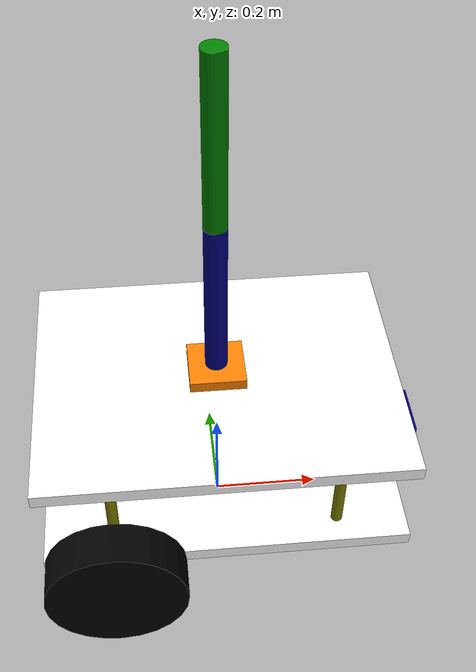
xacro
<?xml version="1.0"?>

<robot name="diff_drive_arm_robot" xmlns:xacro="http://www.ros.org/wiki/xacro">

    <xacro:include filename="properties.xacro" />
    <xacro:include filename="robot_base.xacro" />
    <xacro:include filename="gazebo_urdf_plugin.xacro" />
    <xacro:include filename="arm_robot_base.xacro" />
    <xacro:include filename="sensors.xacro" />

    <joint name="robot_arm_base_joint" type="fixed">
        <parent link="base_link"/>
        <child link="arm_base_link" />
        <origin xyz="0 0 ${base_distance + arm_base_height}" rpy="0 0 0"/>
    </joint>

</robot>

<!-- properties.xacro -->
<robot xmlns:xacro="https://www.ros.org/wiki/xacro">

    <material name="black">
        <color rgba="0 0 0 1" />
    </material>

    <material name="white">
        <color rgba="1 1 1 1" />
    </material>

    <material name="blue">
        <color rgba="0 0 0.5 1" />
    </material>

    <material name="red">
        <color rgba="0.5 0 0 1" />
    </material>

    <material name="green">
        <color rgba="0 0.5 0 1" />
    </material>

    <material name="yellow">
        <color rgba="0.5 0.5 0 1" />
    </material>

    <material name="grey">
        <color rgba="0.5 0.5 0.5 1" />
    </material>

    <material name="orange">
        <color rgba="1 0.5 0 1" />
    </material>

    <xacro:macro name="cylinder_inertia" params="mass radius height o_xyz o_rpy">
        <inertial>
            <mass value="${mass}" />
            <origin xyz="${o_xyz}" rpy="${o_rpy}" />
            <inertia ixx="${(mass/12) * (3 * radius * radius + height * height)}" ixy="0" ixz="0"
                     iyy="${(mass/12) * (3 * radius * radius + height * height)}" iyz="0"
                     izz="${(mass/2) * radius * radius}" />
        </inertial>
    </xacro:macro>

    <xacro:macro name="sphere_inertia" params="mass radius o_xyz o_rpy">
        <inertial>
            <mass value="${mass}" />
            <origin xyz="${o_xyz}" rpy="${o_rpy}" />
            <inertia ixx="${(2/5) * mass * radius * radius}" ixy="0" ixz="0"
                     iyy="${(2/5) * mass * radius * radius}" iyz="0"
                     izz="${(2/5) * mass * radius * radius}" />
        </inertial>
    </xacro:macro>

    <xacro:macro name="box_inertia" params="mass x y z o_xyz o_rpy">
        <inertial>
            <mass value="${mass}" />
            <origin xyz="${o_xyz}" rpy="${o_rpy}" />
            <inertia ixx="${(mass/12) * (y*y + z*z)}" ixy="0" ixz="0"
                     iyy="${(mass/12) * (x*x + z*z)}" iyz="0"
                     izz="${(mass/12) * (x*x + y*y)}" />
        </inertial>
    </xacro:macro>

</robot>

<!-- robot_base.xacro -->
<robot xmlns:xacro="http://www.ros.org/wiki/xacro">

    <xacro:property name="base_length" value="0.65"/>
    <xacro:property name="base_width" value="0.5"/>
    <xacro:property name="base_height" value="0.025"/>
    <xacro:property name="base_distance" value="0.20"/>
    <xacro:property name="wheel_radius" value="0.125"/>
    <xacro:property name="wheel_length" value="0.075"/>
    <xacro:property name="hex_crew_radius" value="0.01"/>
    <xacro:property name="hex_crew_height" value="0.175"/>

    <xacro:macro name="hex_crew_link" params="prefix">
        <link name="${prefix}_hex_crew_link">
            <visual>
                <geometry>
                    <cylinder radius="${hex_crew_radius}" length="${base_distance}" />
                </geometry>
                <origin xyz="0 0 0" rpy="0 0 0" />
                <material name="yellow" />
            </visual>
            <collision>
                <geometry>
                    <sphere radius="${hex_crew_radius}" />
                </geometry>
                <origin xyz="0 0 0" rpy="0 0 0" />
            </collision>
            <xacro:cylinder_inertia mass="0.05" radius="${hex_crew_radius}" height="${base_distance}" o_xyz="0 0 0" o_rpy="0 0 0" />
        </link>
    </xacro:macro>

    <xacro:hex_crew_link prefix="first"/>
    <xacro:hex_crew_link prefix="second"/>
    <xacro:hex_crew_link prefix="third"/>
    <xacro:hex_crew_link prefix="fourth"/>

    <xacro:macro name="wheel_link" params="prefix">
        <link name="${prefix}_wheel_link">
            <visual>
                <geometry>
                    <cylinder radius="${wheel_radius}" length="${wheel_length}" />
                </geometry>
                <origin xyz="0 0 0" rpy="${pi / 2.0} 0 0" />
                <material name="black" />
            </visual>
            <collision>
                <geometry>
                    <sphere radius="${wheel_radius}" />
                </geometry>
                <origin xyz="0 0 0" rpy="0 0 0" />
            </collision>
            <xacro:cylinder_inertia mass="0.25" radius="${wheel_radius}" height="${wheel_length}" o_xyz="0 0 0" o_rpy="${pi / 2.0} 0 0" />
        </link>
    </xacro:macro>

    <xacro:wheel_link prefix="right"/>
    <xacro:wheel_link prefix="left"/>

    <xacro:macro name="castor_wheel_link" params="prefix">
        <link name="${prefix}_castor_wheel_link">
            <visual>
                <geometry>
                    <sphere radius="${wheel_radius / 2}" />
                </geometry>
            <material name="yellow" />
            </visual>
            <collision>
                <geometry>
                    <sphere radius="${wheel_radius / 2}" />
                </geometry>
                <origin xyz="0 0 0" rpy="0 0 0" />
            </collision>
            <xacro:sphere_inertia mass="0.25" radius="${wheel_radius / 2.0}" o_xyz="0 0 0" o_rpy="0 0 0" />
        </link>
    </xacro:macro>

    <xacro:castor_wheel_link prefix="first"/>

    <link name="base_footprint"/>

    <link name="base_link">
        <visual>
            <geometry>
                <box size="${base_length} ${base_width} ${base_height}" />
            </geometry>
            <origin xyz="0 0 ${base_height / 2.0}" rpy="0 0 0" />
            <material name="white" />
        </visual>
        <collision>
            <geometry>
                <box size="${base_length} ${base_width} ${base_height}" />
            </geometry>
            <origin xyz="0 0 ${base_height / 2.0}" rpy="0 0 0" />
        </collision>
        <xacro:box_inertia mass="0.5" x="${base_length}" y="${base_width}" z="${base_height}" o_xyz="0 0 ${base_height / 2.0}" o_rpy="0 0 0" />
    </link>

    <joint name="base_joint" type="fixed">
        <parent link="base_footprint"/>
        <child link="base_link" />
        <origin xyz="0 0 ${wheel_radius}" rpy="0 0 0"/>
    </joint>

    <link name="second_base_link">
        <visual>
            <geometry>
                <box size="${base_length} ${base_width} ${base_height}" />
            </geometry>
            <origin xyz="0 0 0" rpy="0 0 0" />
            <material name="white" />
        </visual>
        <collision>
            <geometry>
                <box size="${base_length} ${base_width} ${base_height}" />
            </geometry>
            <origin xyz="0 0 ${base_height / 2.0}" rpy="0 0 0" />
        </collision>
        <xacro:box_inertia mass="0.5" x="${base_length}" y="${base_width}" z="${base_height}"
                           o_xyz="0 0 ${base_height / 2.0}" o_rpy="0 0 0" />
    </link>

    <joint name="second_base_joint" type="fixed">
        <parent link="base_link" />
        <child link="second_base_link" />
        <origin xyz="0 0 ${base_distance}" rpy="0 0 0" />
    </joint>

    <joint name="base_right_wheel_joint" type="continuous">
        <parent link="base_link" />
        <child link="right_wheel_link" />
        <origin xyz="-${base_width / 2.5} ${(base_width + wheel_length) / 2.0} 0" rpy="0 0 0" />
        <axis xyz="0 1 0" />
    </joint>

    <joint name="base_left_wheel_joint" type="continuous">
        <parent link="base_link" />
        <child link="left_wheel_link" />
        <origin xyz="-${base_width / 2.5} -${(base_width + wheel_length) / 2.0} 0" rpy="0 0 0" />
        <axis xyz="0 1 0" />
    </joint>

    <joint name="base_castor_wheel_joint" type="fixed">
        <parent link="base_link" />
        <child link="first_castor_wheel_link" />
        <origin xyz="${base_width / 2} 0 -${wheel_radius / 2}" rpy="0 0 0" />
    </joint>

    <joint name="first_hex_crew_joint" type="fixed">
        <parent link="base_link" />
        <child link="first_hex_crew_link" />
        <origin xyz="-${base_width / 2.5} -${base_width / 2.5} ${base_distance / 2.0}" rpy="0 0 0" />
    </joint>

    <joint name="second_hex_crew_joint" type="fixed">
        <parent link="base_link" />
        <child link="second_hex_crew_link" />
        <origin xyz="${base_width / 2.5} ${base_width / 2.5} ${base_distance / 2.0}" rpy="0 0 0" />
    </joint>

    <joint name="third_hex_crew_joint" type="fixed">
        <parent link="base_link" />
        <child link="third_hex_crew_link" />
        <origin xyz="${base_width / 2.5} -${base_width / 2.5} ${base_distance / 2.0}" rpy="0 0 0" />
    </joint>

    <joint name="fourth_hex_crew_joint" type="fixed">
        <parent link="base_link" />
        <child link="fourth_hex_crew_link" />
        <origin xyz="-${base_width / 2.5} ${base_width / 2.5} ${base_distance / 2.0}" rpy="0 0 0" />
    </joint>

</robot>

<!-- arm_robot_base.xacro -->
<robot xmlns:xacro="http://www.ros.org/wiki/xacro">

    <xacro:property name="arm_base_length" value="0.1"/>
    <xacro:property name="arm_base_width" value="0.1"/>
    <xacro:property name="arm_base_height" value="0.02"/>
    <xacro:property name="arm_base_mass" value="0.15"/>
    <xacro:property name="forearm_radius" value="0.02"/>
    <xacro:property name="forearm_length" value="0.3"/>
    <xacro:property name="forearm_mass" value="0.15"/>
    <xacro:property name="hand_radius" value="0.02"/>
    <xacro:property name="hand_length" value="0.3"/>
    <xacro:property name="hand_mass" value="0.15"/>

    <link name="arm_base_link">
        <visual>
            <geometry>
                <box size="${arm_base_length} ${arm_base_width} ${arm_base_height}"/>
            </geometry>
            <origin xyz="0 0 ${arm_base_height / 2.0}" rpy="0 0 0"/>
            <material name="orange"/>
        </visual>
        <collision>
            <geometry>
                <box size="${arm_base_length} ${arm_base_width} ${arm_base_height}"/>
            </geometry>
            <origin xyz="0 0 ${arm_base_height / 2.0}" rpy="0 0 0"/>
        </collision>
        <xacro:box_inertia mass="${arm_base_mass}" x="${arm_base_length}" y="${arm_base_width}" z="${arm_base_height}" o_xyz="0 0 0" o_rpy="0 0 0" />
    </link>

    <link name="forearm_link">
        <visual>
            <geometry>
                <cylinder radius="${forearm_radius}" length="${forearm_length}"/>
            </geometry>
            <origin xyz="0 0 ${forearm_length / 2.0}" rpy="0 0 0"/>
            <material name="blue"/>
        </visual>
        <collision>
            <geometry>
                <cylinder radius="${forearm_radius}" length="${forearm_length}"/>
            </geometry>
            <origin xyz="0 0 ${forearm_length / 2.0}" rpy="0 0 0"/>
        </collision>
        <xacro:cylinder_inertia mass="${forearm_mass}" radius="${forearm_radius}" height="${forearm_length}" o_xyz="0 0 ${forearm_length / 2.0}" o_rpy="0 0 0" />
    </link>

    <link name="hand_link" type="revolute">
        <visual>
            <geometry>
                <cylinder radius="${hand_radius}" length="${hand_length}"/>
            </geometry>
            <origin xyz="0 0 ${hand_length / 2.0}" rpy="0 0 0"/>
            <material name="green"/>
        </visual>
        <collision>
            <geometry>
                <cylinder radius="${hand_radius}" length="${hand_length}"/>
            </geometry>
            <origin xyz="0 0 ${hand_length / 2.0}" rpy="0 0 0"/>
        </collision>
        <xacro:cylinder_inertia mass="${hand_mass}" radius="${hand_radius}" height="${hand_length}" o_xyz="0 0 ${hand_length / 2.0}" o_rpy="0 0 0" />
    </link>

    <joint name="arm_base_forearm_joint" type="revolute">
        <parent link="arm_base_link"/>
        <child link="forearm_link"/>
        <origin xyz="0 0 ${arm_base_height}" rpy="0 0 0"/>
        <axis xyz="0 1 0" />
        <limit effort="100" velocity="100" lower="0" upper="${pi / 2.0}"/>
        <dynamics damping="0.3" friction="0.3"/>
    </joint>

    <joint name="forearm_hand_joint" type="revolute">
        <parent link="forearm_link"/>
        <child link="hand_link"/>
        <origin xyz="0 0 ${forearm_length}" rpy="0 0 0"/>
        <axis xyz="0 1 0" />
        <limit effort="100" velocity="100" lower="0" upper="${pi / 2.0}"/>
        <dynamics damping="0.3" friction="0.3"/>
    </joint>

</robot>

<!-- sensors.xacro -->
<robot xmlns:xacro="http://www.ros.org/wiki/xacro">

    <xacro:property name="camera_length" value="0.05"/>
    <xacro:property name="camera_width" value="0.1"/>
    <xacro:property name="camera_height" value="0.05"/>
    <xacro:property name="imu_length" value="0.075"/>
    <xacro:property name="imu_width" value="0.025"/>
    <xacro:property name="imu_height" value="0.02"/>
    <xacro:property name="lidar_radius" value="0.08"/>
    <xacro:property name="lidar_height" value="0.05"/>

    <link name="camera_link">
        <visual>
            <geometry>
                <box size="${camera_length} ${camera_width} ${camera_height}"/>
            </geometry>
            <origin xyz="0 0 0" rpy="0 0 0"/>
            <material name="blue"/>
        </visual>
        <collision>
            <geometry>
                <box size="${camera_length} ${camera_width} ${camera_height}"/>
            </geometry>
            <origin xyz="0 0 0" rpy="0 0 0"/>
        </collision>
        <xacro:box_inertia mass="0.15" x="${camera_length}" y="${camera_width}" z="${camera_height}" o_xyz="0 0 0" o_rpy="0 0 0" />
    </link>

    <link name = "camera_link_optical"/>

    <link name = "imu_link">
        <visual>
            <geometry>
                <box size="${imu_length} ${imu_width} ${imu_height}"/>
            </geometry>
            <origin xyz="0 0 0" rpy="0 0 0"/>
            <material name="red"/>
        </visual>
        <collision>
            <geometry>
                <box size="${imu_length} ${imu_width} ${imu_height}"/>
            </geometry>
            <origin xyz="0 0 0" rpy="0 0 0"/>
        </collision>
        <xacro:box_inertia mass="0.1" x="${imu_length}" y="${imu_width}" z="${imu_height}" o_xyz="0 0 0" o_rpy="0 0 0" />
    </link>

    <joint name = "base_camera_joint" type="fixed">
        <parent link="base_link"/>
        <child link="camera_link"/>
        <origin xyz="${(base_length + camera_length) / 2} 0 ${base_height + camera_height / 2}" rpy="0 0 0"/>
    </joint>

    <gazebo reference="camera_link">
        <sensor name="camera" type="camera">
            <camera>
                <horizontal_fov>1.0472</horizontal_fov>
                <image>
                    <width>640</width>
                    <height>480</height>
                    <format>R8G8B8</format>
                </image>
                <clip>
                    <near>0.1</near>
                    <far>15</far>
                </clip>
                <noise>
                    <type>gaussian</type>
                    <mean>0.0</mean>
                    <stddev>0.01</stddev>
                </noise>
                <optical_frame_id>camera_link_optical</optical_frame_id>
                <camera_info_topic>camera/camera_info</camera_info_topic>
            </camera>
            <always_on>true</always_on>
            <update_rate>20</update_rate>
            <visualize>true</visualize>
            <topic>camera/image_raw</topic>
        </sensor>
    </gazebo>

    <joint name="camera_optical_joint" type="fixed">
        <parent link="camera_link"/>
        <child link="camera_link_optical"/>
        <origin xyz="0 0 0" rpy="-${pi/2} 0 -${pi/2}"/>
    </joint>

    <joint name = "base_imu_joint" type="fixed">
        <parent link="base_link"/>
        <child link="imu_link"/>
        <origin xyz="0 0 ${base_height + imu_height / 2.0}" rpy="0 0 0"/>
    </joint>

</robot>
